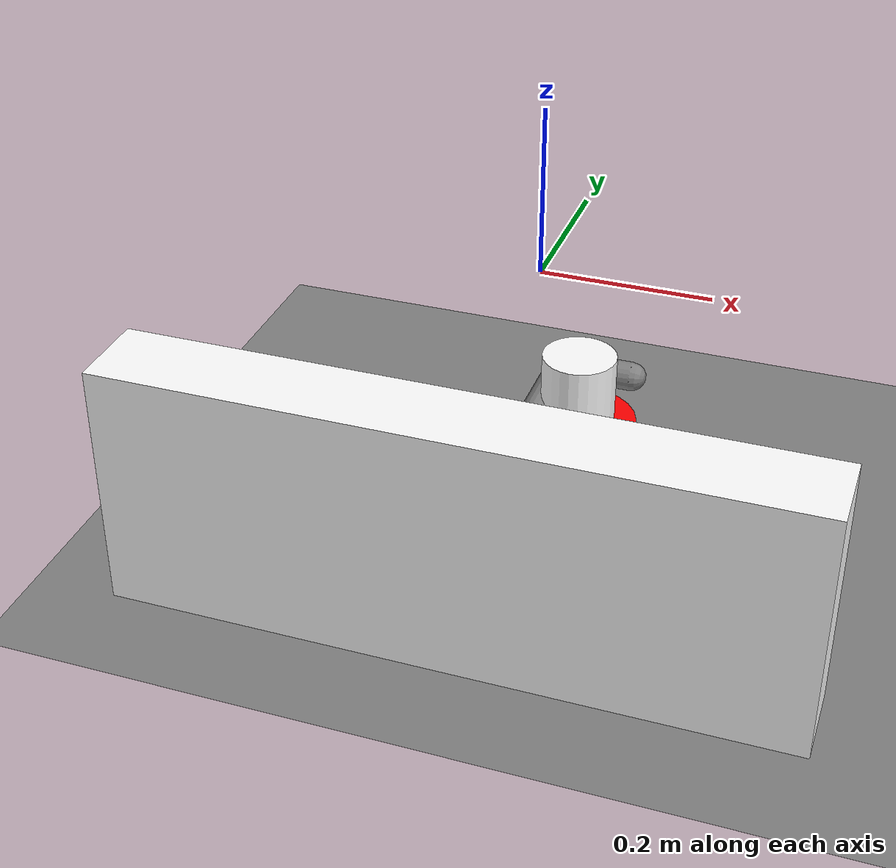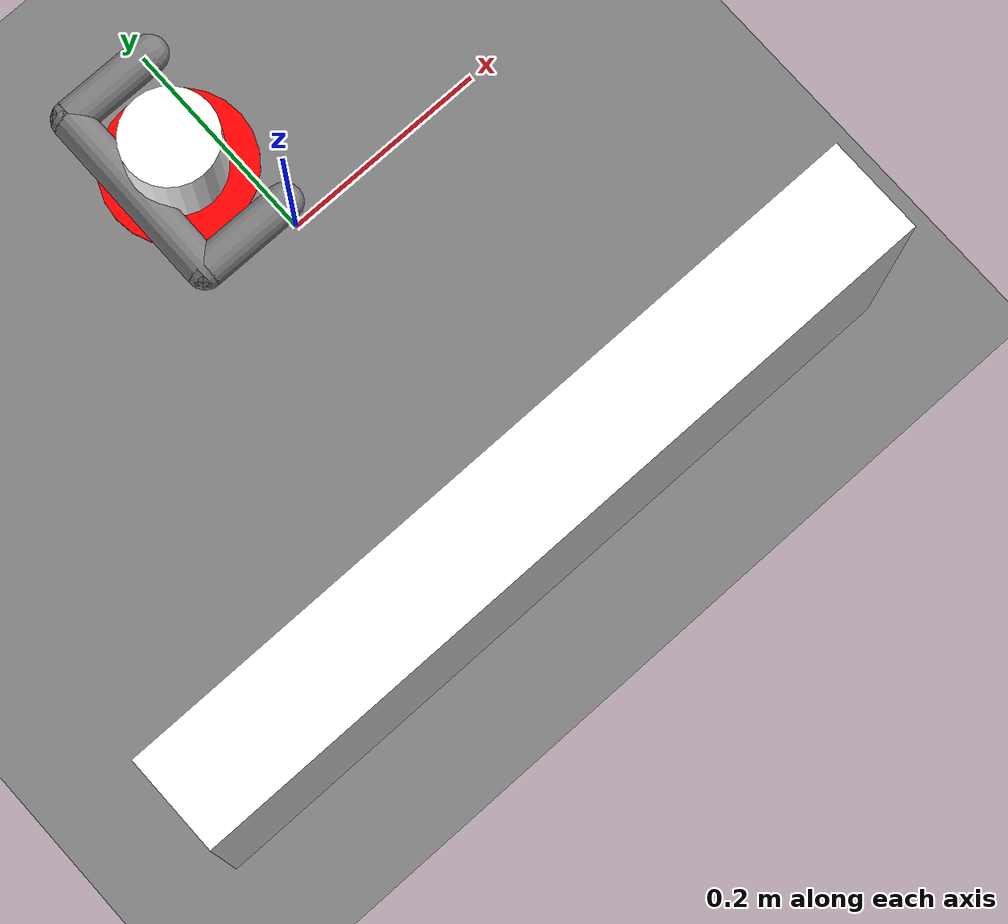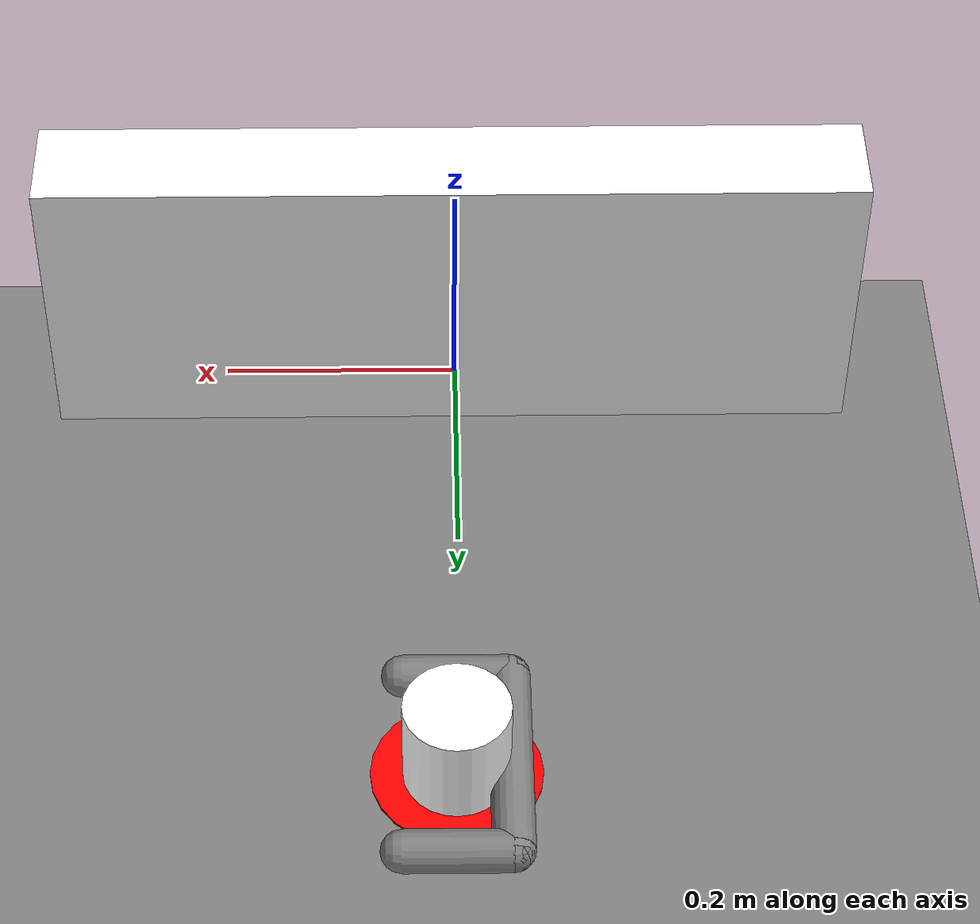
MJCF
<mujoco model="arm3d">
  <compiler inertiafromgeom="true" angle="radian" coordinate="local"/>
  <option timestep="0.01" gravity="0 0 0" iterations="20" integrator="Euler" />

  <default>
    <joint armature='0.04' damping="1" limited="true"/>
    <geom friction=".8 .1 .1" density="300" margin="0.002" condim="1" contype="0" conaffinity="0"/>
  </default>

  <worldbody>
    <light diffuse="1 1 1" pos="0 -2 0.5" dir="0 1 -0.1" directional="true"/>
    <geom name="table" type="plane" pos="0 0.5 -0.325" size="1 1 0.1" contype="1" conaffinity="1"/>

    <body name="pusher" pos="-0.05 0.2 -0.305">
      <body name="r_wrist_flex_link" pos="0 0 0">
        <geom name="wf" type="capsule" fromto="0 -0.02 0 0 0.02 0" size="0.01" />
        <joint name="push_slidex" type="slide" pos="0 0 0" axis="1 0 0" range="-10.3213 10.3" damping="0.1"/>
        <joint name="push_slidey" type="slide" pos="0 0 0" axis="0 1 0" range="-10.3213 10.3" damping="0.1"/>
        <joint name="push_hinge"  type="hinge" pos="0 0 0" axis="0 0 1" range="-1000. 1000.0" damping="0.1"/>
        <body name="r_wrist_roll_link" pos="0 0 0">
          <body name="tips_arm" pos="0 0 0">
            <geom name="tip_arml" type="sphere" pos="0.1 -0.1 0." size="0.01" />
            <geom name="tip_armr" type="sphere" pos="0.1 0.1 0." size="0.01" />
          </body>
          <geom type="capsule" fromto="0 -0.1 0. 0.0 +0.1 0" size="0.02" contype="1" conaffinity="1" />
          <geom type="capsule" fromto="0 -0.1 0. 0.1 -0.1 0" size="0.02" contype="1" conaffinity="1" />
          <geom type="capsule" fromto="0 +0.1 0. 0.1 +0.1 0." size="0.02" contype="1" conaffinity="1" />
        </body>
      </body>
    </body>

    <body name="blocker" pos="0.4 -0.30 -0.165">
      <!-- reference is at the right tip -->
      <geom rgba="1 1 1 1" type="box" size="0.4 0.05 0.15" pos="-0.4 0 0" density="0.00001" conaffinity="0" contype="1"/>
      <joint name="blocker_slidex" type="slide" pos="0.0 0 0" axis="1 0 0" range="-10.3213 10.3" damping="0.5" springref="0" stiffness="0.1"/>
    </body>

    <body name="object" pos="0.0 0.2 -0.275" >
      <geom rgba="1 1 1 0" type="sphere" size="0.05 0.05 0.05" density="0.00001" conaffinity="0"/>
      <geom rgba="1 1 1 1" type="cylinder" size="0.05 0.05 0.05" density="0.00001" contype="1" conaffinity="0"/>
      <joint name="obj_slidex" type="slide" pos="0 0 0" axis="1 0 0" range="-10.3213 10.3" damping="0.5"/>
      <joint name="obj_slidey" type="slide" pos="0 0 0" axis="0 1 0" range="-10.3213 10.3" damping="0.5"/>
    </body>

    <body name="goal" pos="0.0 0.2 -0.3230">
      <geom rgba="1 0 0 1" type="cylinder" size="0.08 0.001 0.1" density='0.00001' contype="0" conaffinity="0"/>
      <joint name="goal_slidex" type="slide" pos="0 0 0" axis="1 0 0" range="-10.3213 10.3" damping="0.5"/>
      <joint name="goal_slidey" type="slide" pos="0 0 0" axis="0 1 0" range="-10.3213 10.3" damping="0.5"/>
    </body>

  </worldbody>

  <actuator>
    <motor ctrllimited="true" ctrlrange="-1.0 1.0" gear="0.01" joint="push_slidex"/>
    <motor ctrllimited="true" ctrlrange="-1.0 1.0" gear="0.01" joint="push_slidey"/>
    <motor ctrllimited="true" ctrlrange="-1.0 1.0" gear="1" joint="push_hinge"/>
    <motor joint="blocker_slidex" ctrlrange="-1.0 1.0" gear="1" ctrllimited="true"/>
  </actuator>
</mujoco>
